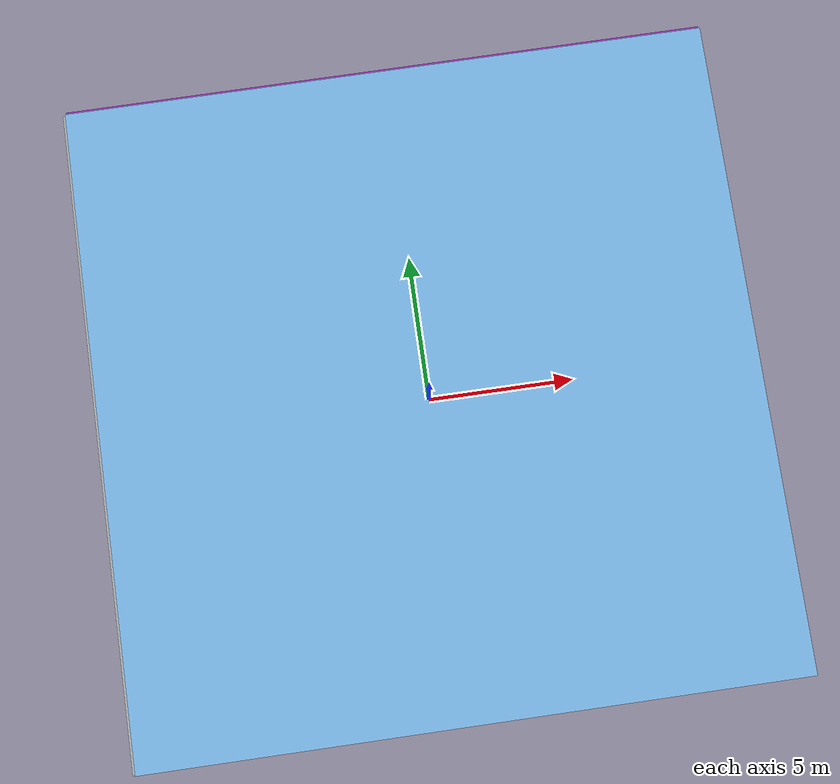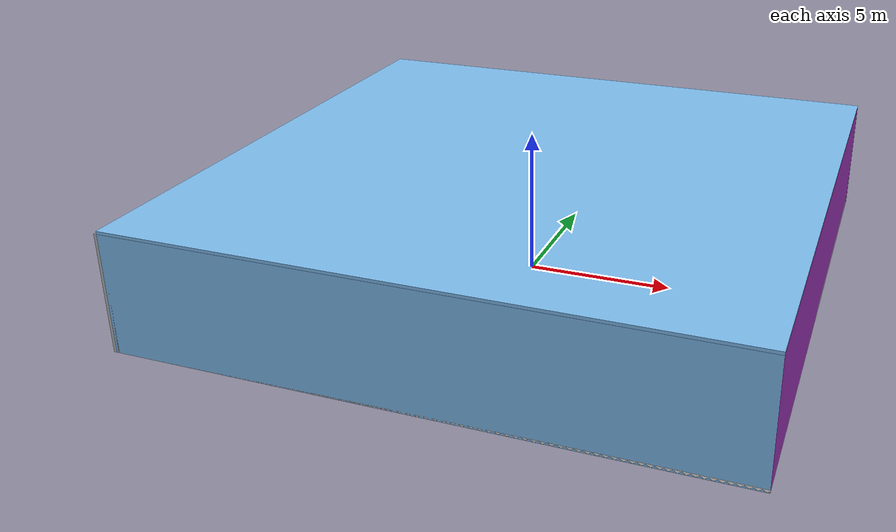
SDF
<sdf version="1.4">
 <world name="default">
  <physics type="ode">
   <max_step_size>0.001</max_step_size>
   <real_time_factor>1</real_time_factor>
   <real_time_update_rate>1000</real_time_update_rate>
   <gravity>0 0 -9.8</gravity>
  </physics>
  <scene><ambient>0.4 0.4 0.4 1</ambient><background>0.7 0.7 0.7 1</background><shadows>1</shadows></scene>
  <model name="Surrounding">
   <static>1</static>
   <link name="Ceiling">
    <collision name="Ceiling_Collision"><geometry><box><size>20 20 0.1</size></box></geometry></collision>
    <visual name="Ceiling_Visual">
     <geometry><box><size>20 20 0.1</size></box></geometry>
     <material>
      <script><uri>file://media/materials/scripts/gazebo.material</uri><name>Gazebo/SkyBlue</name></script>
     </material>
    </visual>
    <pose>0 0 4.05 0 0 0</pose>
   </link>
   <link name="Wall_South">
    <collision name="Wall_South_Collision">
     <geometry><box><size>20 0 4</size></box></geometry>
     <pose>0 0 2 0 -0 0</pose>
    </collision>
    <visual name="Wall_South_Visual">
     <pose>0 0 2 0 -0 0</pose>
     <geometry><box><size>20 0 4</size></box></geometry>
     <material>
      <script><uri>file://media/materials/scripts/gazebo.material</uri><name>Gazebo/SkyBlue</name></script>
     </material>
    </visual>
    <velocity_decay><linear>0</linear><angular>0</angular></velocity_decay>
    <pose>0 -10 0 0 -0 0</pose>
   </link>
   <link name="Wall_East">
    <collision name="Wall_21_Collision">
     <geometry><box><size>20 0 4</size></box></geometry>
     <pose>0 0 2 0 -0 0</pose>
    </collision>
    <visual name="Wall_21_Visual">
     <pose>0 0 2 0 -0 0</pose>
     <geometry><box><size>20 0 4</size></box></geometry>
     <material>
      <script><uri>file://media/materials/scripts/gazebo.material</uri><name>Gazebo/PurpleGlow</name></script>
     </material>
    </visual>
    <velocity_decay><linear>0</linear><angular>0</angular></velocity_decay>
    <pose>10 0 0 0 -0 1.5708</pose>
   </link>
   <link name="Wall_North">
    <collision name="Wall_22_Collision">
     <geometry><box><size>20 0.2 4</size></box></geometry>
     <pose>0 0 2 0 -0 0</pose>
    </collision>
    <visual name="Wall_22_Visual">
     <pose>0 0 2 0 -0 0</pose>
     <geometry><box><size>20 0.2 4</size></box></geometry>
     <material>
      <script><uri>file://media/materials/scripts/gazebo.material</uri><name>Gazebo/PurpleGlow</name></script>
     </material>
    </visual>
    <velocity_decay><linear>0</linear><angular>0</angular></velocity_decay>
    <pose>0 10 0 0 -0 0</pose>
   </link>
   <link name="Wall_West">
    <collision name="Wall_23_Collision">
     <geometry><box><size>20 0.2 4</size></box></geometry>
     <pose>0 0 2 0 -0 0</pose>
    </collision>
    <visual name="Wall_23_Visual">
     <pose>0 0 2 0 -0 0</pose>
     <geometry><box><size>20 0.2 4</size></box></geometry>
     <material>
      <script><uri>file://media/materials/scripts/gazebo.material</uri><name>Gazebo/PioneerBody</name></script>
     </material>
    </visual>
    <velocity_decay><linear>0</linear><angular>0</angular></velocity_decay>
    <pose>-10 0 0 0 0 -1.5708</pose>
   </link>
   <link name="Ground_link">
    <collision name="collision">
     <pose>0 0 .05 0 -0 0</pose>
     <geometry><box><size>20 20 0.1</size></box></geometry>
    </collision>
    <visual name="visual">
     <pose>0 0 .05 0 -0 0</pose>
     <geometry><box><size>20 20 0.1</size></box></geometry>
     <material>
      <script><uri>file://media/materials/scripts/gazebo.material</uri><name>Gazebo/WhiteGlow</name></script>
     </material>
    </visual>
   </link>
   <static>1</static>
  </model>
  <spherical_coordinates>
   <surface_model>EARTH_WGS84</surface_model>
   <latitude_deg>0</latitude_deg>
   <longitude_deg>0</longitude_deg>
   <elevation>0</elevation>
   <heading_deg>0</heading_deg>
  </spherical_coordinates>
  <light name="lightball_0" type="diffuse">
   <diffuse>0.8 0.8 0.8 1</diffuse>
   <specular>0.2 0.2 0.2 1</specular>
   <attenuation>
    <range>100</range>
    <constant>0.7</constant>
    <linear>0.01</linear>
    <quadratic>0.001</quadratic>
   </attenuation>
   <direction>-0.5 0.1 -0.9</direction>
   <pose>-5.94310726096 -3.04888601914 1.96546172502 0 0 0</pose>
  </light>
  <light name="lightball_1" type="diffuse">
   <diffuse>0.8 0.8 0.8 1</diffuse>
   <specular>0.2 0.2 0.2 1</specular>
   <attenuation>
    <range>100</range>
    <constant>0.7</constant>
    <linear>0.01</linear>
    <quadratic>0.001</quadratic>
   </attenuation>
   <direction>-0.5 0.1 -0.9</direction>
   <pose>2.39341140105 0.307439024913 2.50589475178 0 0 0</pose>
  </light>
  <light name="lightball_2" type="diffuse">
   <diffuse>0.8 0.8 0.8 1</diffuse>
   <specular>0.2 0.2 0.2 1</specular>
   <attenuation>
    <range>100</range>
    <constant>0.7</constant>
    <linear>0.01</linear>
    <quadratic>0.001</quadratic>
   </attenuation>
   <direction>-0.5 0.1 -0.9</direction>
   <pose>6.42663377836 9.88085905627 2.90505219246 0 0 0</pose>
  </light>
  <light name="lightball_3" type="diffuse">
   <diffuse>0.8 0.8 0.8 1</diffuse>
   <specular>0.2 0.2 0.2 1</specular>
   <attenuation>
    <range>100</range>
    <constant>0.7</constant>
    <linear>0.01</linear>
    <quadratic>0.001</quadratic>
   </attenuation>
   <direction>-0.5 0.1 -0.9</direction>
   <pose>2.30427303035 5.71079267424 1.27529708275 0 0 0</pose>
  </light>
  <light name="lightball_4" type="diffuse">
   <diffuse>0.8 0.8 0.8 1</diffuse>
   <specular>0.2 0.2 0.2 1</specular>
   <attenuation>
    <range>100</range>
    <constant>0.7</constant>
    <linear>0.01</linear>
    <quadratic>0.001</quadratic>
   </attenuation>
   <direction>-0.5 0.1 -0.9</direction>
   <pose>-1.86595665426 9.74375300485 2.81568393422 0 0 0</pose>
  </light>
  <light name="lightball_5" type="diffuse">
   <diffuse>0.8 0.8 0.8 1</diffuse>
   <specular>0.2 0.2 0.2 1</specular>
   <attenuation>
    <range>100</range>
    <constant>0.7</constant>
    <linear>0.01</linear>
    <quadratic>0.001</quadratic>
   </attenuation>
   <direction>-0.5 0.1 -0.9</direction>
   <pose>8.59954638593 1.68805509881 2.37086590112 0 0 0</pose>
  </light>
  <light name="lightball_6" type="diffuse">
   <diffuse>0.8 0.8 0.8 1</diffuse>
   <specular>0.2 0.2 0.2 1</specular>
   <attenuation>
    <range>100</range>
    <constant>0.7</constant>
    <linear>0.01</linear>
    <quadratic>0.001</quadratic>
   </attenuation>
   <direction>-0.5 0.1 -0.9</direction>
   <pose>1.87364480075 -9.03559378328 1.30006426551 0 0 0</pose>
  </light>
  <light name="lightball_7" type="diffuse">
   <diffuse>0.8 0.8 0.8 1</diffuse>
   <specular>0.2 0.2 0.2 1</specular>
   <attenuation>
    <range>100</range>
    <constant>0.7</constant>
    <linear>0.01</linear>
    <quadratic>0.001</quadratic>
   </attenuation>
   <direction>-0.5 0.1 -0.9</direction>
   <pose>4.39743065753 9.15211016037 0.503415317656 0 0 0</pose>
  </light>
  <light name="lightball_8" type="diffuse">
   <diffuse>0.8 0.8 0.8 1</diffuse>
   <specular>0.2 0.2 0.2 1</specular>
   <attenuation>
    <range>100</range>
    <constant>0.7</constant>
    <linear>0.01</linear>
    <quadratic>0.001</quadratic>
   </attenuation>
   <direction>-0.5 0.1 -0.9</direction>
   <pose>-9.31838387065 5.82589187024 3.78218747323 0 0 0</pose>
  </light>
  <include>
   <uri>model://construction_cone</uri>
   <pose>7.46233195498 -4.83318658162 0 0 0 2.87278780112</pose>
  </include>
  <include><uri>model://table</uri><pose>7.31943967431 7.88726843802 0 0 0 3.03086194291</pose></include>
 </world>
</sdf>

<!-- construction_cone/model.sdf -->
<sdf version="1.5">
  <model name="Construction Cone">
    <link name="link">
      <collision name="collision">
        <geometry>
          <mesh>
            <scale>10 10 10</scale>
            <uri>file://isr-testbed/construction_cone/meshes/construction_cone.dae</uri>
          </mesh>
        </geometry>
      </collision>
      <visual name="visual">
        <geometry>
          <mesh>
            <scale>10 10 10</scale>
            <uri>file://isr-testbed/construction_cone/meshes/construction_cone.dae</uri>
          </mesh>
        </geometry>
      </visual>
    </link>
  </model>
</sdf>

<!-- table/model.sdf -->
<sdf version="1.5">
  <model name="table">
    <static>true</static>
    <link name="link">
      <collision name="surface">
        <pose>0 0 1.0 0 0 0</pose>
        <geometry>
          <box>
            <size>1.5 0.8 0.03</size>
          </box>
        </geometry>
        <surface>
          <friction>
            <ode>
              <mu>0.6</mu>
              <mu2>0.6</mu2>
            </ode>
          </friction>
        </surface>
      </collision>
      <visual name="visual1">
        <pose>0 0 1.0 0 0 0</pose>
        <geometry>
          <box>
            <size>1.5 0.8 0.03</size>
          </box>
        </geometry>
        <material>
          <script>
            <uri>model://media/materials/scripts/gazebo.material</uri>
            <name>Gazebo/Wood</name>
          </script>
        </material>
      </visual>
      <collision name="front_left_leg">
        <pose>0.68 0.38 0.5 0 0 0</pose>
        <geometry>
          <cylinder>
            <radius>0.02</radius>
            <length>1.0</length>
          </cylinder>
        </geometry>
      </collision>
      <visual name="front_left_leg">
        <pose>0.68 0.38 0.5 0 0 0</pose>
        <geometry>
          <cylinder>
            <radius>0.02</radius>
            <length>1.0</length>
          </cylinder>
        </geometry>
        <material>
          <script>
            <uri>model://media/materials/scripts/gazebo.material</uri>
            <name>Gazebo/Grey</name>
          </script>
        </material>
      </visual>
      <collision name="front_right_leg">
        <pose>0.68 -0.38 0.5 0 0 0</pose>
        <geometry>
          <cylinder>
            <radius>0.02</radius>
            <length>1.0</length>
          </cylinder>
        </geometry>
      </collision>
      <visual name="front_right_leg">
        <pose>0.68 -0.38 0.5 0 0 0</pose>
        <geometry>
          <cylinder>
            <radius>0.02</radius>
            <length>1.0</length>
          </cylinder>
        </geometry>
        <material>
          <script>
            <uri>model://media/materials/scripts/gazebo.material</uri>
            <name>Gazebo/Grey</name>
          </script>
        </material>
      </visual>
      <collision name="back_right_leg">
        <pose>-0.68 -0.38 0.5 0 0 0</pose>
        <geometry>
          <cylinder>
            <radius>0.02</radius>
            <length>1.0</length>
          </cylinder>
        </geometry>
      </collision>
      <visual name="back_right_leg">
        <pose>-0.68 -0.38 0.5 0 0 0</pose>
        <geometry>
          <cylinder>
            <radius>0.02</radius>
            <length>1.0</length>
          </cylinder>
        </geometry>
        <material>
          <script>
            <uri>model://media/materials/scripts/gazebo.material</uri>
            <name>Gazebo/Grey</name>
          </script>
        </material>
      </visual>
      <collision name="back_left_leg">
        <pose>-0.68 0.38 0.5 0 0 0</pose>
        <geometry>
          <cylinder>
            <radius>0.02</radius>
            <length>1.0</length>
          </cylinder>
        </geometry>
      </collision>
      <visual name="back_left_leg">
        <pose>-0.68 0.38 0.5 0 0 0</pose>
        <geometry>
          <cylinder>
            <radius>0.02</radius>
            <length>1.0</length>
          </cylinder>
        </geometry>
        <material>
          <script>
            <uri>model://media/materials/scripts/gazebo.material</uri>
            <name>Gazebo/Grey</name>
          </script>
        </material>
      </visual>
    </link>
  </model>
</sdf>
